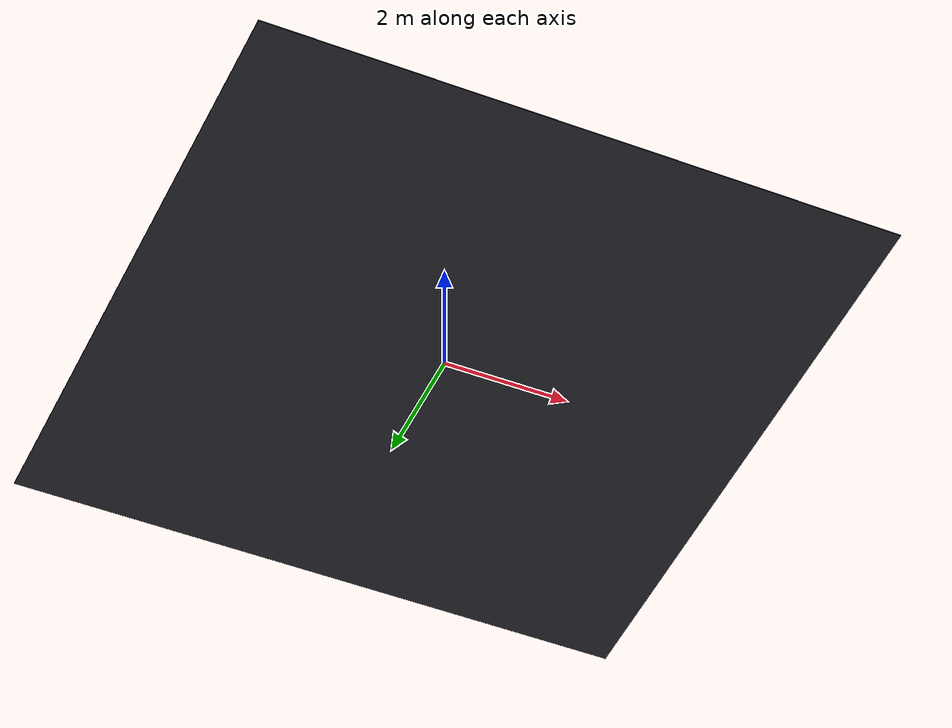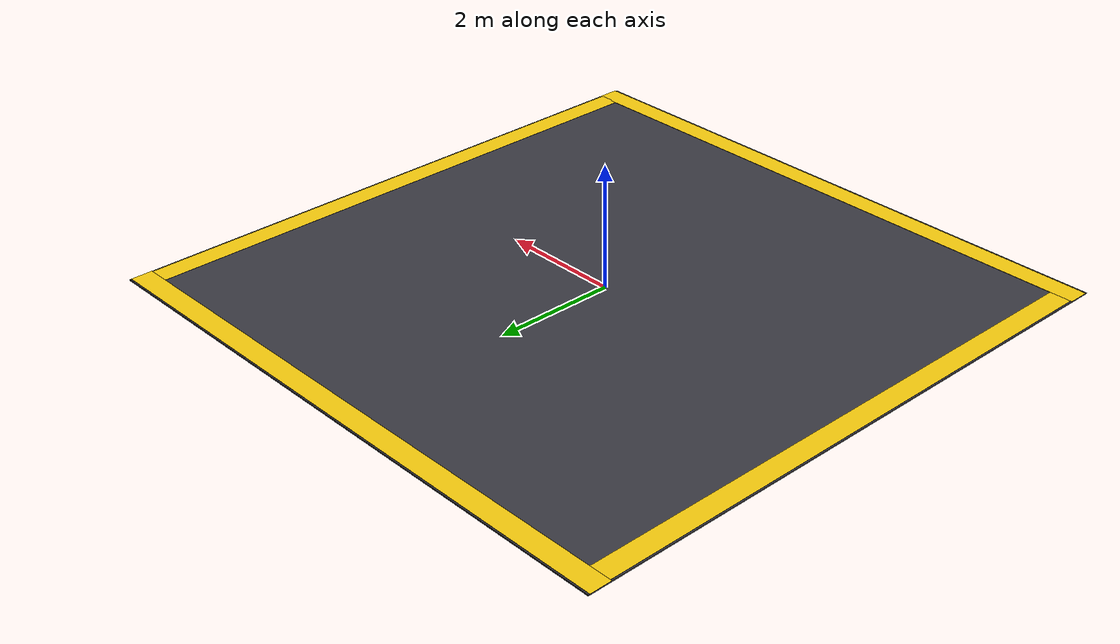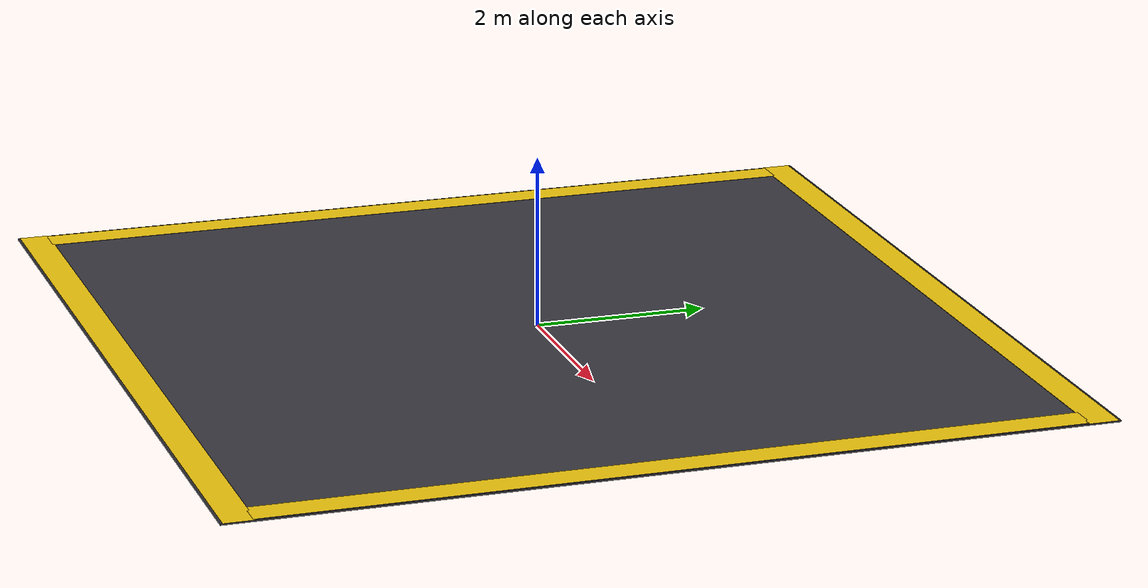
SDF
<?xml version="1.0" encoding="UTF-8"?>
<sdf version="1.9">
  <model name="isilab_launchpad">
    <static>true</static>
    <link name="link">
      <!-- Nền bê tông sẫm màu hình vuông 10m x 10m -->
      <collision name="collision">
        <pose>0 0 0.008 0 0 0</pose>
        <geometry>
          <box>
            <size>10.0 10.0 0.016</size>
          </box>
        </geometry>
      </collision>

      <visual name="base_tarmac">
        <pose>0 0 0.008 0 0 0</pose>
        <geometry>
          <box>
            <size>10.0 10.0 0.016</size>
          </box>
        </geometry>
        <material>
          <ambient>0.18 0.18 0.20 1</ambient>
          <diffuse>0.22 0.22 0.25 1</diffuse>
          <specular>0.08 0.08 0.08 1</specular>
        </material>
      </visual>

      <!-- Vạch viền vàng an toàn xung quanh 10m x 10m -->
      <visual name="border_north">
        <pose>0 4.8 0.017 0 0 0</pose>
        <geometry><box><size>10.0 0.35 0.004</size></box></geometry>
        <material><ambient>0.95 0.78 0.05 1</ambient><diffuse>0.95 0.78 0.05 1</diffuse></material>
      </visual>
      <visual name="border_south">
        <pose>0 -4.8 0.017 0 0 0</pose>
        <geometry><box><size>10.0 0.35 0.004</size></box></geometry>
        <material><ambient>0.95 0.78 0.05 1</ambient><diffuse>0.95 0.78 0.05 1</diffuse></material>
      </visual>
      <visual name="border_east">
        <pose>4.8 0 0.017 0 0 0</pose>
        <geometry><box><size>0.35 9.3 0.004</size></box></geometry>
        <material><ambient>0.95 0.78 0.05 1</ambient><diffuse>0.95 0.78 0.05 1</diffuse></material>
      </visual>
      <visual name="border_west">
        <pose>-4.8 0 0.017 0 0 0</pose>
        <geometry><box><size>0.35 9.3 0.004</size></box></geometry>
        <material><ambient>0.95 0.78 0.05 1</ambient><diffuse>0.95 0.78 0.05 1</diffuse></material>
      </visual>

      <!-- Bề mặt sơn Logo ISILAB lớn 8m x 8m bao quanh khu vực xuất phát -->
      <visual name="isilab_painted_logo">
        <pose>0 0 0.020 0 0 0</pose>
        <cast_shadows>false</cast_shadows>
        <geometry>
          <plane>
            <normal>0 0 1</normal>
            <size>8.0 8.0</size>
          </plane>
        </geometry>
        <material>
          <ambient>0.9 0.9 0.9 1</ambient>
          <diffuse>1.0 1.0 1.0 1</diffuse>
          <pbr>
            <metal>
              <albedo_map>model://isilab_launchpad/materials/textures/isilab_square.png</albedo_map>
              <roughness>0.4</roughness>
              <metalness>0.0</metalness>
            </metal>
          </pbr>
        </material>
      </visual>
    </link>
  </model>
</sdf>
